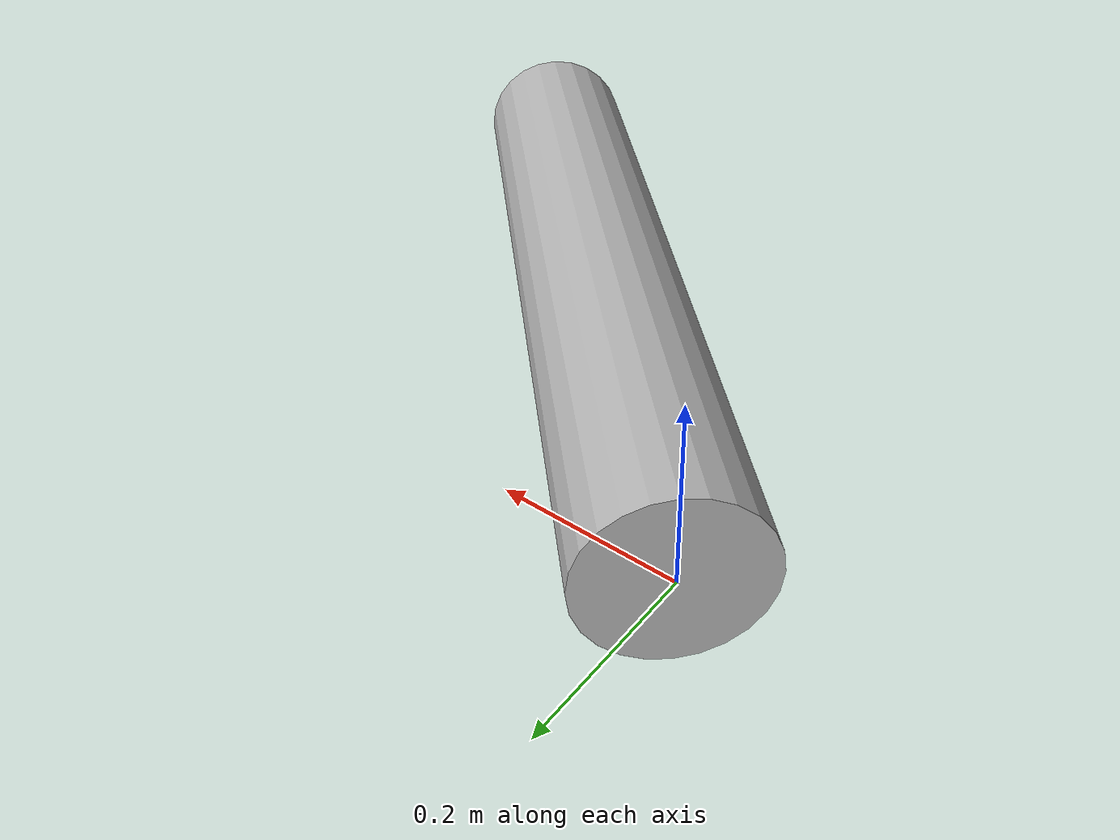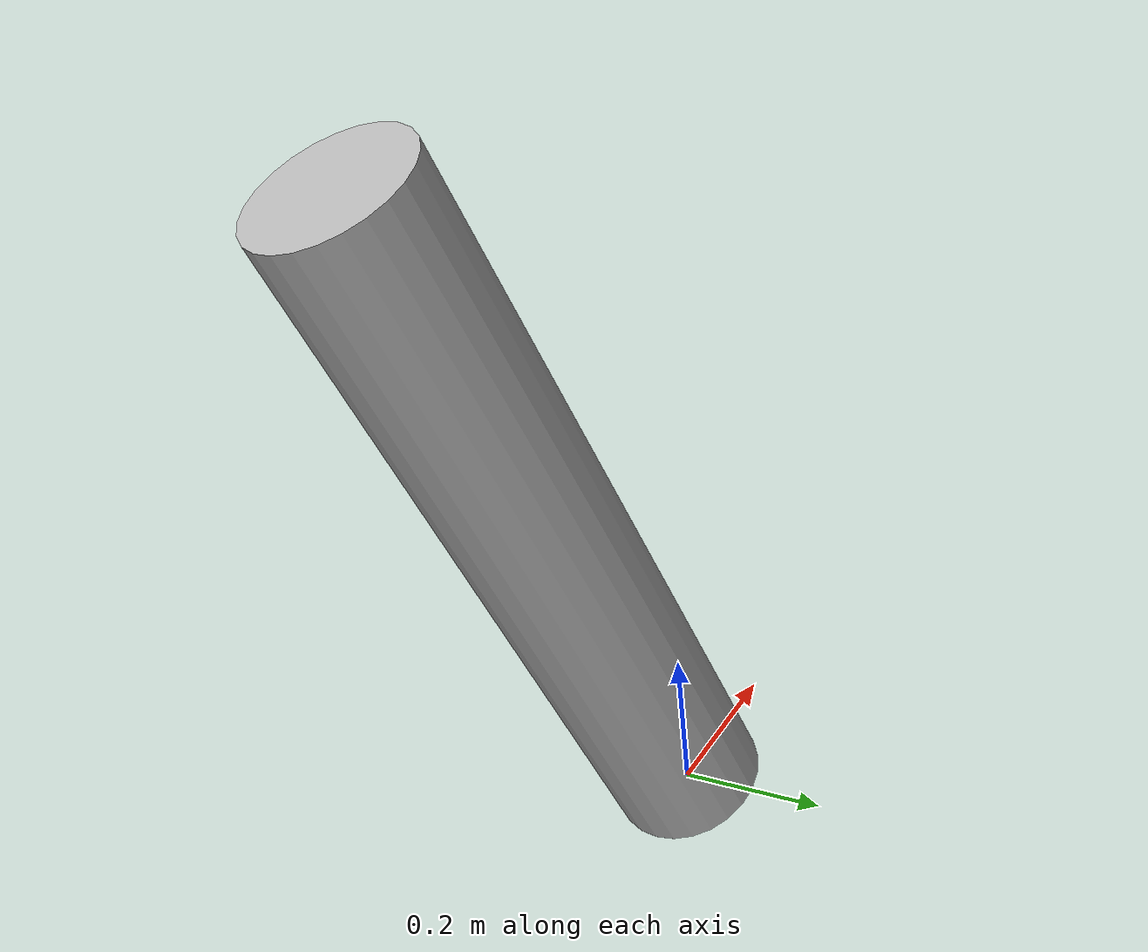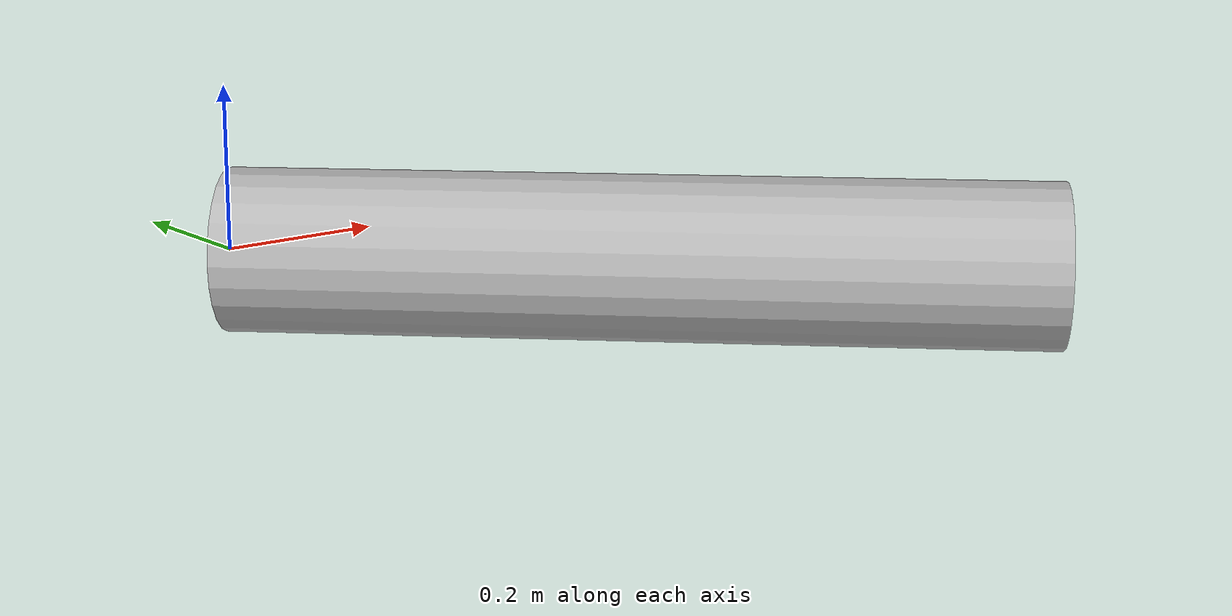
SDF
<?xml version='1.0'?>
<sdf version='1.5'>
  <model name='Euler angle test'>
    <static>true</static>

    <link name='base'>
      <pose>0 0 0  0 1.5707963267948966 -0.7853981633974483</pose>

      <visual name='visual'>
	<pose>0 0 0.5  0 0 0</pose>

	<geometry>
	  <cylinder>
	    <radius>0.1</radius>
	    <length>1</length>
	  </cylinder>
	</geometry>

      </visual>

    </link>

  </model>
</sdf>
